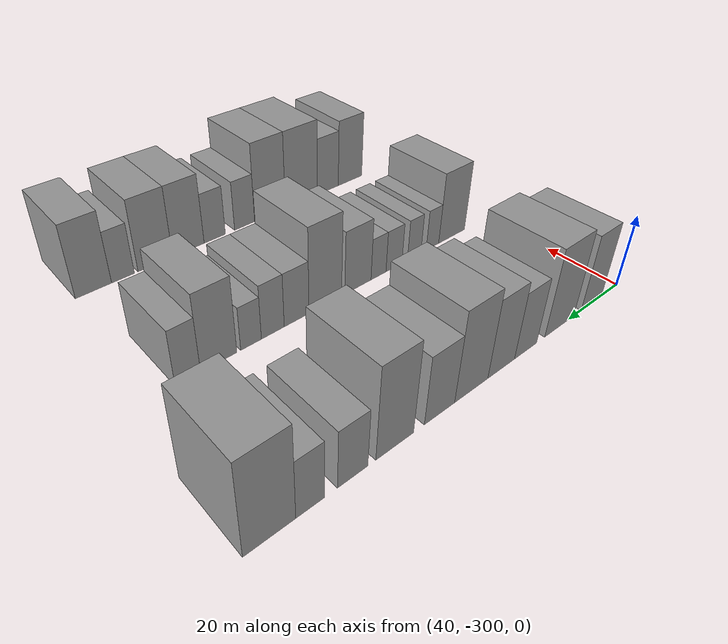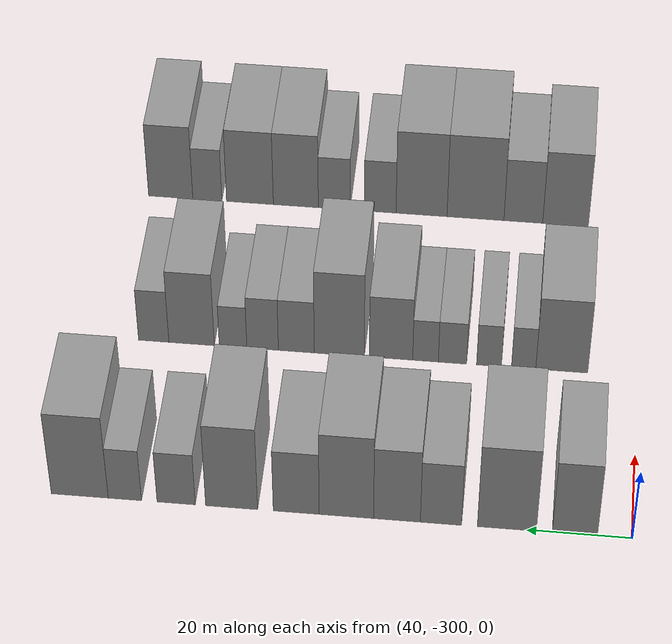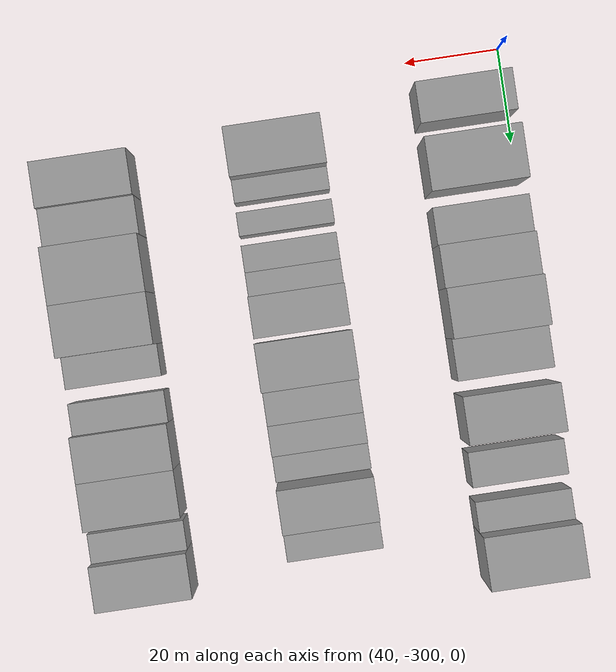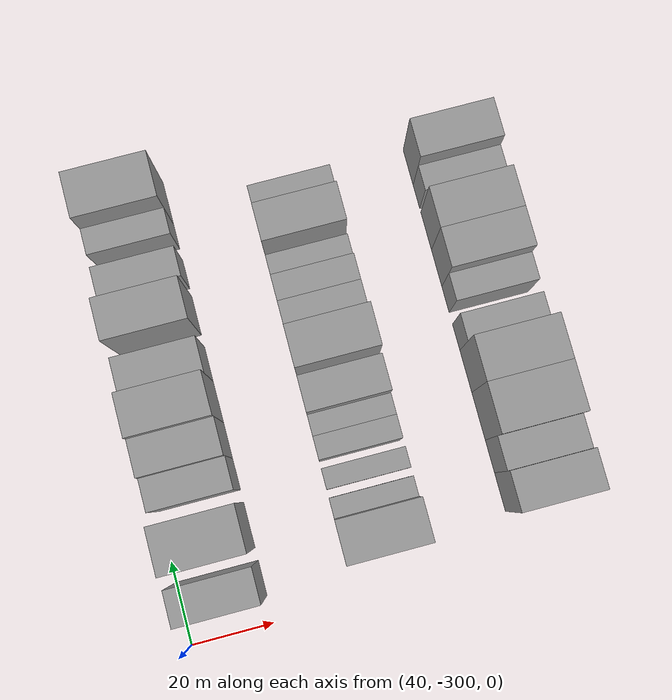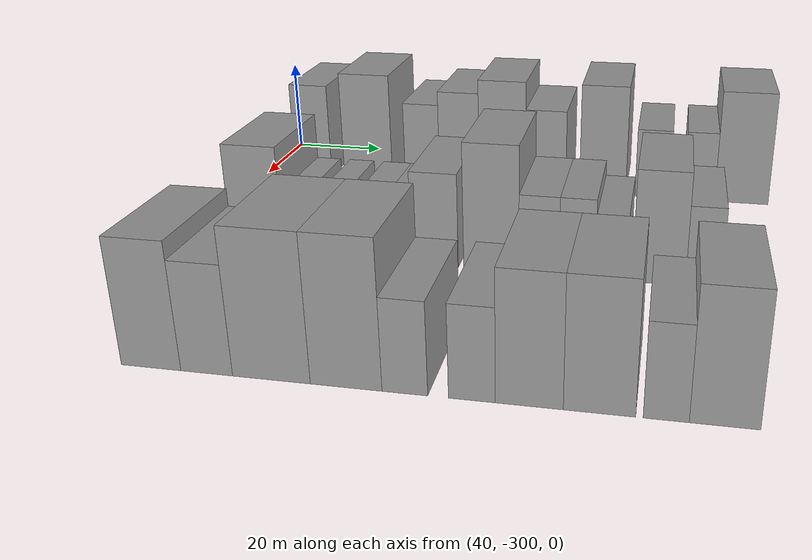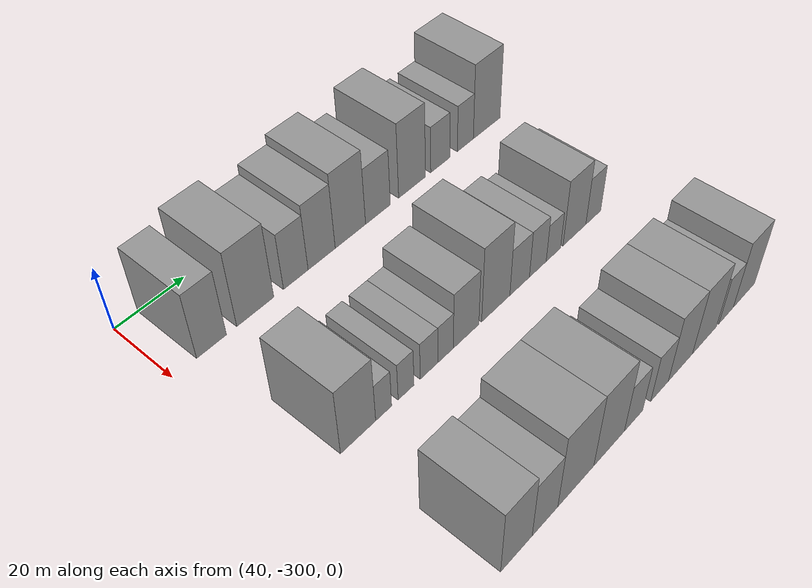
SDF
<sdf version="1.6">
 <world name="default">
  <model name="building_11">
   <static>1</static>
   <pose>50.0000 -289.1540 0 0.000000 0.000000 0.000000</pose>
   <link name="link">
    <pose>0 0 10.50 0 0 0</pose>
    <collision name="collision"><geometry><box><size>20.0000 8.5169 21.0000</size></box></geometry></collision>
    <visual name="visual">
     <cast_shadows>0</cast_shadows>
     <geometry><box><size>20.0000 8.5169 21.0000</size></box></geometry>
     <material>
      <script>
       <uri>model://grey_wall/materials/scripts</uri>
       <uri>model://grey_wall/materials/textures</uri>
       <name>vrc/grey_wall</name>
      </script>
     </material>
    </visual>
   </link>
  </model>
  <model name="building_12">
   <static>1</static>
   <pose>50.0000 -276.3157 0 0.000000 0.000000 0.000000</pose>
   <link name="link">
    <pose>0 0 12.00 0 0 0</pose>
    <collision name="collision"><geometry><box><size>20.0000 11.1597 24.0000</size></box></geometry></collision>
    <visual name="visual">
     <cast_shadows>0</cast_shadows>
     <geometry><box><size>20.0000 11.1597 24.0000</size></box></geometry>
     <material>
      <script>
       <uri>model://grey_wall/materials/scripts</uri>
       <uri>model://grey_wall/materials/textures</uri>
       <name>vrc/grey_wall</name>
      </script>
     </material>
    </visual>
   </link>
  </model>
  <model name="building_13">
   <static>1</static>
   <pose>50.0000 -263.8303 0 0.000000 0.000000 0.000000</pose>
   <link name="link">
    <pose>0 0 9.00 0 0 0</pose>
    <collision name="collision"><geometry><box><size>20.0000 7.8110 18.0000</size></box></geometry></collision>
    <visual name="visual">
     <cast_shadows>0</cast_shadows>
     <geometry><box><size>20.0000 7.8110 18.0000</size></box></geometry>
     <material>
      <script>
       <uri>model://grey_wall/materials/scripts</uri>
       <uri>model://grey_wall/materials/textures</uri>
       <name>vrc/grey_wall</name>
      </script>
     </material>
    </visual>
   </link>
  </model>
  <model name="building_14">
   <static>1</static>
   <pose>50.0000 -255.4769 0 0.000000 0.000000 0.000000</pose>
   <link name="link">
    <pose>0 0 10.50 0 0 0</pose>
    <collision name="collision"><geometry><box><size>20.0000 8.8958 21.0000</size></box></geometry></collision>
    <visual name="visual">
     <cast_shadows>0</cast_shadows>
     <geometry><box><size>20.0000 8.8958 21.0000</size></box></geometry>
     <material>
      <script>
       <uri>model://grey_wall/materials/scripts</uri>
       <uri>model://grey_wall/materials/textures</uri>
       <name>vrc/grey_wall</name>
      </script>
     </material>
    </visual>
   </link>
  </model>
  <model name="building_15">
   <static>1</static>
   <pose>50.0000 -245.8537 0 0.000000 0.000000 0.000000</pose>
   <link name="link">
    <pose>0 0 12.00 0 0 0</pose>
    <collision name="collision"><geometry><box><size>20.0000 10.3506 24.0000</size></box></geometry></collision>
    <visual name="visual">
     <cast_shadows>0</cast_shadows>
     <geometry><box><size>20.0000 10.3506 24.0000</size></box></geometry>
     <material>
      <script>
       <uri>model://grey_wall/materials/scripts</uri>
       <uri>model://grey_wall/materials/textures</uri>
       <name>vrc/grey_wall</name>
      </script>
     </material>
    </visual>
   </link>
  </model>
  <model name="building_16">
   <static>1</static>
   <pose>50.0000 -236.2907 0 0.000000 0.000000 0.000000</pose>
   <link name="link">
    <pose>0 0 9.00 0 0 0</pose>
    <collision name="collision"><geometry><box><size>20.0000 8.7754 18.0000</size></box></geometry></collision>
    <visual name="visual">
     <cast_shadows>0</cast_shadows>
     <geometry><box><size>20.0000 8.7754 18.0000</size></box></geometry>
     <material>
      <script>
       <uri>model://grey_wall/materials/scripts</uri>
       <uri>model://grey_wall/materials/textures</uri>
       <name>vrc/grey_wall</name>
      </script>
     </material>
    </visual>
   </link>
  </model>
  <model name="building_17">
   <static>1</static>
   <pose>50.0000 -223.9286 0 0.000000 0.000000 0.000000</pose>
   <link name="link">
    <pose>0 0 12.00 0 0 0</pose>
    <collision name="collision"><geometry><box><size>20.0000 9.9487 24.0000</size></box></geometry></collision>
    <visual name="visual">
     <cast_shadows>0</cast_shadows>
     <geometry><box><size>20.0000 9.9487 24.0000</size></box></geometry>
     <material>
      <script>
       <uri>model://grey_wall/materials/scripts</uri>
       <uri>model://grey_wall/materials/textures</uri>
       <name>vrc/grey_wall</name>
      </script>
     </material>
    </visual>
   </link>
  </model>
  <model name="building_18">
   <static>1</static>
   <pose>50.0000 -213.2876 0 0.000000 0.000000 0.000000</pose>
   <link name="link">
    <pose>0 0 7.50 0 0 0</pose>
    <collision name="collision"><geometry><box><size>20.0000 7.3333 15.0000</size></box></geometry></collision>
    <visual name="visual">
     <cast_shadows>0</cast_shadows>
     <geometry><box><size>20.0000 7.3333 15.0000</size></box></geometry>
     <material>
      <script>
       <uri>model://grey_wall/materials/scripts</uri>
       <uri>model://grey_wall/materials/textures</uri>
       <name>vrc/grey_wall</name>
      </script>
     </material>
    </visual>
   </link>
  </model>
  <model name="building_19">
   <static>1</static>
   <pose>50.0000 -203.4211 0 0.000000 0.000000 0.000000</pose>
   <link name="link">
    <pose>0 0 7.50 0 0 0</pose>
    <collision name="collision"><geometry><box><size>20.0000 6.3996 15.0000</size></box></geometry></collision>
    <visual name="visual">
     <cast_shadows>0</cast_shadows>
     <geometry><box><size>20.0000 6.3996 15.0000</size></box></geometry>
     <material>
      <script>
       <uri>model://grey_wall/materials/scripts</uri>
       <uri>model://grey_wall/materials/textures</uri>
       <name>vrc/grey_wall</name>
      </script>
     </material>
    </visual>
   </link>
  </model>
  <model name="building_20">
   <static>1</static>
   <pose>50.0000 -194.7316 0 0.000000 0.000000 0.000000</pose>
   <link name="link">
    <pose>0 0 12.00 0 0 0</pose>
    <collision name="collision"><geometry><box><size>20.0000 10.9794 24.0000</size></box></geometry></collision>
    <visual name="visual">
     <cast_shadows>0</cast_shadows>
     <geometry><box><size>20.0000 10.9794 24.0000</size></box></geometry>
     <material>
      <script>
       <uri>model://grey_wall/materials/scripts</uri>
       <uri>model://grey_wall/materials/textures</uri>
       <name>vrc/grey_wall</name>
      </script>
     </material>
    </visual>
   </link>
  </model>
  <model name="building_92">
   <static>1</static>
   <pose>90.0000 -285.0010 0 0.000000 0.000000 0.000000</pose>
   <link name="link">
    <pose>0 0 10.50 0 0 0</pose>
    <collision name="collision"><geometry><box><size>20.0000 10.3161 21.0000</size></box></geometry></collision>
    <visual name="visual">
     <cast_shadows>0</cast_shadows>
     <geometry><box><size>20.0000 10.3161 21.0000</size></box></geometry>
     <material>
      <script>
       <uri>model://grey_wall/materials/scripts</uri>
       <uri>model://grey_wall/materials/textures</uri>
       <name>vrc/grey_wall</name>
      </script>
     </material>
    </visual>
   </link>
  </model>
  <model name="building_93">
   <static>1</static>
   <pose>90.0000 -277.4280 0 0.000000 0.000000 0.000000</pose>
   <link name="link">
    <pose>0 0 6.00 0 0 0</pose>
    <collision name="collision"><geometry><box><size>20.0000 4.8298 12.0000</size></box></geometry></collision>
    <visual name="visual">
     <cast_shadows>0</cast_shadows>
     <geometry><box><size>20.0000 4.8298 12.0000</size></box></geometry>
     <material>
      <script>
       <uri>model://grey_wall/materials/scripts</uri>
       <uri>model://grey_wall/materials/textures</uri>
       <name>vrc/grey_wall</name>
      </script>
     </material>
    </visual>
   </link>
  </model>
  <model name="building_94">
   <static>1</static>
   <pose>90.0000 -270.5345 0 0.000000 0.000000 0.000000</pose>
   <link name="link">
    <pose>0 0 6.00 0 0 0</pose>
    <collision name="collision"><geometry><box><size>20.0000 4.9573 12.0000</size></box></geometry></collision>
    <visual name="visual">
     <cast_shadows>0</cast_shadows>
     <geometry><box><size>20.0000 4.9573 12.0000</size></box></geometry>
     <material>
      <script>
       <uri>model://grey_wall/materials/scripts</uri>
       <uri>model://grey_wall/materials/textures</uri>
       <name>vrc/grey_wall</name>
      </script>
     </material>
    </visual>
   </link>
  </model>
  <model name="building_95">
   <static>1</static>
   <pose>90.0000 -263.2368 0 0.000000 0.000000 0.000000</pose>
   <link name="link">
    <pose>0 0 6.00 0 0 0</pose>
    <collision name="collision"><geometry><box><size>20.0000 5.6381 12.0000</size></box></geometry></collision>
    <visual name="visual">
     <cast_shadows>0</cast_shadows>
     <geometry><box><size>20.0000 5.6381 12.0000</size></box></geometry>
     <material>
      <script>
       <uri>model://grey_wall/materials/scripts</uri>
       <uri>model://grey_wall/materials/textures</uri>
       <name>vrc/grey_wall</name>
      </script>
     </material>
    </visual>
   </link>
  </model>
  <model name="building_96">
   <static>1</static>
   <pose>90.0000 -257.8529 0 0.000000 0.000000 0.000000</pose>
   <link name="link">
    <pose>0 0 6.00 0 0 0</pose>
    <collision name="collision"><geometry><box><size>20.0000 5.1297 12.0000</size></box></geometry></collision>
    <visual name="visual">
     <cast_shadows>0</cast_shadows>
     <geometry><box><size>20.0000 5.1297 12.0000</size></box></geometry>
     <material>
      <script>
       <uri>model://grey_wall/materials/scripts</uri>
       <uri>model://grey_wall/materials/textures</uri>
       <name>vrc/grey_wall</name>
      </script>
     </material>
    </visual>
   </link>
  </model>
  <model name="building_97">
   <static>1</static>
   <pose>90.0000 -250.9488 0 0.000000 0.000000 0.000000</pose>
   <link name="link">
    <pose>0 0 9.00 0 0 0</pose>
    <collision name="collision"><geometry><box><size>20.0000 8.6785 18.0000</size></box></geometry></collision>
    <visual name="visual">
     <cast_shadows>0</cast_shadows>
     <geometry><box><size>20.0000 8.6785 18.0000</size></box></geometry>
     <material>
      <script>
       <uri>model://grey_wall/materials/scripts</uri>
       <uri>model://grey_wall/materials/textures</uri>
       <name>vrc/grey_wall</name>
      </script>
     </material>
    </visual>
   </link>
  </model>
  <model name="building_98">
   <static>1</static>
   <pose>90.0000 -240.5894 0 0.000000 0.000000 0.000000</pose>
   <link name="link">
    <pose>0 0 12.00 0 0 0</pose>
    <collision name="collision"><geometry><box><size>20.0000 10.0403 24.0000</size></box></geometry></collision>
    <visual name="visual">
     <cast_shadows>0</cast_shadows>
     <geometry><box><size>20.0000 10.0403 24.0000</size></box></geometry>
     <material>
      <script>
       <uri>model://grey_wall/materials/scripts</uri>
       <uri>model://grey_wall/materials/textures</uri>
       <name>vrc/grey_wall</name>
      </script>
     </material>
    </visual>
   </link>
  </model>
  <model name="building_99">
   <static>1</static>
   <pose>90.0000 -231.9601 0 0.000000 0.000000 0.000000</pose>
   <link name="link">
    <pose>0 0 7.50 0 0 0</pose>
    <collision name="collision"><geometry><box><size>20.0000 7.2184 15.0000</size></box></geometry></collision>
    <visual name="visual">
     <cast_shadows>0</cast_shadows>
     <geometry><box><size>20.0000 7.2184 15.0000</size></box></geometry>
     <material>
      <script>
       <uri>model://grey_wall/materials/scripts</uri>
       <uri>model://grey_wall/materials/textures</uri>
       <name>vrc/grey_wall</name>
      </script>
     </material>
    </visual>
   </link>
  </model>
  <model name="building_100">
   <static>1</static>
   <pose>90.0000 -225.1664 0 0.000000 0.000000 0.000000</pose>
   <link name="link">
    <pose>0 0 7.50 0 0 0</pose>
    <collision name="collision"><geometry><box><size>20.0000 6.3689 15.0000</size></box></geometry></collision>
    <visual name="visual">
     <cast_shadows>0</cast_shadows>
     <geometry><box><size>20.0000 6.3689 15.0000</size></box></geometry>
     <material>
      <script>
       <uri>model://grey_wall/materials/scripts</uri>
       <uri>model://grey_wall/materials/textures</uri>
       <name>vrc/grey_wall</name>
      </script>
     </material>
    </visual>
   </link>
  </model>
  <model name="building_101">
   <static>1</static>
   <pose>90.0000 -219.2055 0 0.000000 0.000000 0.000000</pose>
   <link name="link">
    <pose>0 0 6.00 0 0 0</pose>
    <collision name="collision"><geometry><box><size>20.0000 5.5530 12.0000</size></box></geometry></collision>
    <visual name="visual">
     <cast_shadows>0</cast_shadows>
     <geometry><box><size>20.0000 5.5530 12.0000</size></box></geometry>
     <material>
      <script>
       <uri>model://grey_wall/materials/scripts</uri>
       <uri>model://grey_wall/materials/textures</uri>
       <name>vrc/grey_wall</name>
      </script>
     </material>
    </visual>
   </link>
  </model>
  <model name="building_102">
   <static>1</static>
   <pose>90.0000 -210.8341 0 0.000000 0.000000 0.000000</pose>
   <link name="link">
    <pose>0 0 10.50 0 0 0</pose>
    <collision name="collision"><geometry><box><size>20.0000 9.1899 21.0000</size></box></geometry></collision>
    <visual name="visual">
     <cast_shadows>0</cast_shadows>
     <geometry><box><size>20.0000 9.1899 21.0000</size></box></geometry>
     <material>
      <script>
       <uri>model://grey_wall/materials/scripts</uri>
       <uri>model://grey_wall/materials/textures</uri>
       <name>vrc/grey_wall</name>
      </script>
     </material>
    </visual>
   </link>
  </model>
  <model name="building_103">
   <static>1</static>
   <pose>90.0000 -203.1733 0 0.000000 0.000000 0.000000</pose>
   <link name="link">
    <pose>0 0 7.50 0 0 0</pose>
    <collision name="collision"><geometry><box><size>20.0000 6.1317 15.0000</size></box></geometry></collision>
    <visual name="visual">
     <cast_shadows>0</cast_shadows>
     <geometry><box><size>20.0000 6.1317 15.0000</size></box></geometry>
     <material>
      <script>
       <uri>model://grey_wall/materials/scripts</uri>
       <uri>model://grey_wall/materials/textures</uri>
       <name>vrc/grey_wall</name>
      </script>
     </material>
    </visual>
   </link>
  </model>
  <model name="building_182">
   <static>1</static>
   <pose>130.0000 -284.1128 0 0.000000 0.000000 0.000000</pose>
   <link name="link">
    <pose>0 0 10.50 0 0 0</pose>
    <collision name="collision"><geometry><box><size>20.0000 9.5212 21.0000</size></box></geometry></collision>
    <visual name="visual">
     <cast_shadows>0</cast_shadows>
     <geometry><box><size>20.0000 9.5212 21.0000</size></box></geometry>
     <material>
      <script>
       <uri>model://grey_wall/materials/scripts</uri>
       <uri>model://grey_wall/materials/textures</uri>
       <name>vrc/grey_wall</name>
      </script>
     </material>
    </visual>
   </link>
  </model>
  <model name="building_183">
   <static>1</static>
   <pose>130.0000 -275.2955 0 0.000000 0.000000 0.000000</pose>
   <link name="link">
    <pose>0 0 9.00 0 0 0</pose>
    <collision name="collision"><geometry><box><size>20.0000 8.1135 18.0000</size></box></geometry></collision>
    <visual name="visual">
     <cast_shadows>0</cast_shadows>
     <geometry><box><size>20.0000 8.1135 18.0000</size></box></geometry>
     <material>
      <script>
       <uri>model://grey_wall/materials/scripts</uri>
       <uri>model://grey_wall/materials/textures</uri>
       <name>vrc/grey_wall</name>
      </script>
     </material>
    </visual>
   </link>
  </model>
  <model name="building_184">
   <static>1</static>
   <pose>130.0000 -265.2795 0 0.000000 0.000000 0.000000</pose>
   <link name="link">
    <pose>0 0 12.00 0 0 0</pose>
    <collision name="collision"><geometry><box><size>20.0000 11.9183 24.0000</size></box></geometry></collision>
    <visual name="visual">
     <cast_shadows>0</cast_shadows>
     <geometry><box><size>20.0000 11.9183 24.0000</size></box></geometry>
     <material>
      <script>
       <uri>model://grey_wall/materials/scripts</uri>
       <uri>model://grey_wall/materials/textures</uri>
       <name>vrc/grey_wall</name>
      </script>
     </material>
    </visual>
   </link>
  </model>
  <model name="building_185">
   <static>1</static>
   <pose>130.0000 -253.9694 0 0.000000 0.000000 0.000000</pose>
   <link name="link">
    <pose>0 0 12.00 0 0 0</pose>
    <collision name="collision"><geometry><box><size>20.0000 10.7020 24.0000</size></box></geometry></collision>
    <visual name="visual">
     <cast_shadows>0</cast_shadows>
     <geometry><box><size>20.0000 10.7020 24.0000</size></box></geometry>
     <material>
      <script>
       <uri>model://grey_wall/materials/scripts</uri>
       <uri>model://grey_wall/materials/textures</uri>
       <name>vrc/grey_wall</name>
      </script>
     </material>
    </visual>
   </link>
  </model>
  <model name="building_186">
   <static>1</static>
   <pose>130.0000 -245.2798 0 0.000000 0.000000 0.000000</pose>
   <link name="link">
    <pose>0 0 7.50 0 0 0</pose>
    <collision name="collision"><geometry><box><size>20.0000 6.6770 15.0000</size></box></geometry></collision>
    <visual name="visual">
     <cast_shadows>0</cast_shadows>
     <geometry><box><size>20.0000 6.6770 15.0000</size></box></geometry>
     <material>
      <script>
       <uri>model://grey_wall/materials/scripts</uri>
       <uri>model://grey_wall/materials/textures</uri>
       <name>vrc/grey_wall</name>
      </script>
     </material>
    </visual>
   </link>
  </model>
  <model name="building_187">
   <static>1</static>
   <pose>130.0000 -235.5930 0 0.000000 0.000000 0.000000</pose>
   <link name="link">
    <pose>0 0 7.50 0 0 0</pose>
    <collision name="collision"><geometry><box><size>20.0000 6.6967 15.0000</size></box></geometry></collision>
    <visual name="visual">
     <cast_shadows>0</cast_shadows>
     <geometry><box><size>20.0000 6.6967 15.0000</size></box></geometry>
     <material>
      <script>
       <uri>model://grey_wall/materials/scripts</uri>
       <uri>model://grey_wall/materials/textures</uri>
       <name>vrc/grey_wall</name>
      </script>
     </material>
    </visual>
   </link>
  </model>
  <model name="building_188">
   <static>1</static>
   <pose>130.0000 -227.4922 0 0.000000 0.000000 0.000000</pose>
   <link name="link">
    <pose>0 0 10.50 0 0 0</pose>
    <collision name="collision"><geometry><box><size>20.0000 9.5048 21.0000</size></box></geometry></collision>
    <visual name="visual">
     <cast_shadows>0</cast_shadows>
     <geometry><box><size>20.0000 9.5048 21.0000</size></box></geometry>
     <material>
      <script>
       <uri>model://grey_wall/materials/scripts</uri>
       <uri>model://grey_wall/materials/textures</uri>
       <name>vrc/grey_wall</name>
      </script>
     </material>
    </visual>
   </link>
  </model>
  <model name="building_189">
   <static>1</static>
   <pose>130.0000 -217.7890 0 0.000000 0.000000 0.000000</pose>
   <link name="link">
    <pose>0 0 10.50 0 0 0</pose>
    <collision name="collision"><geometry><box><size>20.0000 9.9017 21.0000</size></box></geometry></collision>
    <visual name="visual">
     <cast_shadows>0</cast_shadows>
     <geometry><box><size>20.0000 9.9017 21.0000</size></box></geometry>
     <material>
      <script>
       <uri>model://grey_wall/materials/scripts</uri>
       <uri>model://grey_wall/materials/textures</uri>
       <name>vrc/grey_wall</name>
      </script>
     </material>
    </visual>
   </link>
  </model>
  <model name="building_190">
   <static>1</static>
   <pose>130.0000 -208.7566 0 0.000000 0.000000 0.000000</pose>
   <link name="link">
    <pose>0 0 7.50 0 0 0</pose>
    <collision name="collision"><geometry><box><size>20.0000 6.1632 15.0000</size></box></geometry></collision>
    <visual name="visual">
     <cast_shadows>0</cast_shadows>
     <geometry><box><size>20.0000 6.1632 15.0000</size></box></geometry>
     <material>
      <script>
       <uri>model://grey_wall/materials/scripts</uri>
       <uri>model://grey_wall/materials/textures</uri>
       <name>vrc/grey_wall</name>
      </script>
     </material>
    </visual>
   </link>
  </model>
  <model name="building_191">
   <static>1</static>
   <pose>130.0000 -200.9824 0 0.000000 0.000000 0.000000</pose>
   <link name="link">
    <pose>0 0 10.50 0 0 0</pose>
    <collision name="collision"><geometry><box><size>20.0000 9.3852 21.0000</size></box></geometry></collision>
    <visual name="visual">
     <cast_shadows>0</cast_shadows>
     <geometry><box><size>20.0000 9.3852 21.0000</size></box></geometry>
     <material>
      <script>
       <uri>model://grey_wall/materials/scripts</uri>
       <uri>model://grey_wall/materials/textures</uri>
       <name>vrc/grey_wall</name>
      </script>
     </material>
    </visual>
   </link>
  </model>
 </world>
</sdf>
